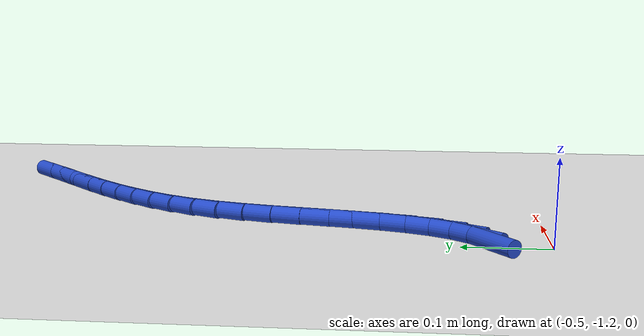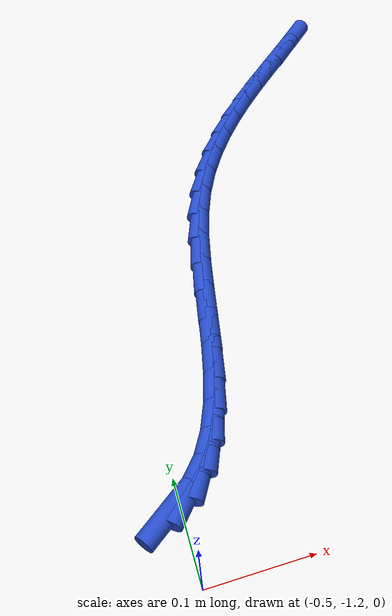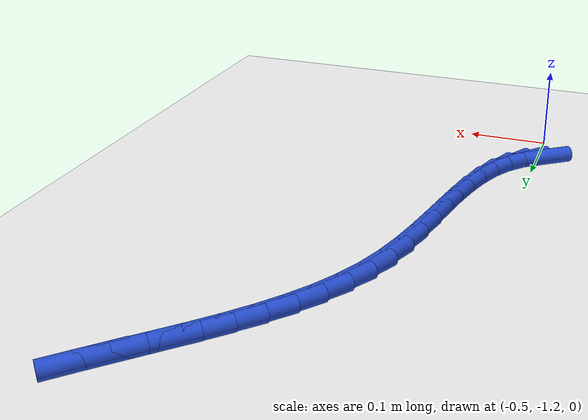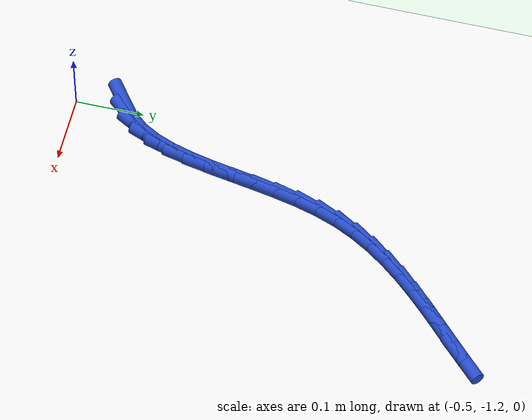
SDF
<sdf version="1.6">
 <world name="default">
  <model name="ground_plane">
   <static>1</static>
   <link name="link">
    <collision name="collision">
     <geometry><plane><normal>0 0 1</normal><size>100 100</size></plane></geometry>
     <surface><friction><ode><mu>100</mu><mu2>50</mu2></ode></friction></surface>
    </collision>
    <visual name="visual">
     <cast_shadows>0</cast_shadows>
     <geometry><plane><normal>0 0 1</normal><size>100 100</size></plane></geometry>
     <material>
      <script><uri>file://media/materials/scripts/gazebo.material</uri><name>Gazebo/WhiteGlow</name></script>
     </material>
    </visual>
   </link>
  </model>
  <model name="line">
   <link name="link_219">
    <pose>-0.5062939679249083 -1.129089946154273 0.01 0 1.57 0.6374153050875176</pose>
    <collision name="collision">
     <geometry><cylinder><radius>0.01</radius><length>0.08</length></cylinder></geometry>
    </collision>
    <visual name="visual">
     <material>
      <script><name>Gazebo/Blue</name><uri>file://media/materials/scripts/gazebo.material</uri></script>
     </material>
     <geometry><cylinder><radius>0.01</radius><length>0.08</length></cylinder></geometry>
    </visual>
   </link>
   <link name="link_220">
    <pose>-0.4857956326798358 -1.1139102315332052 0.01 0 1.57 0.8650249233705916</pose>
    <collision name="collision">
     <geometry><cylinder><radius>0.01</radius><length>0.08</length></cylinder></geometry>
    </collision>
    <visual name="visual">
     <material>
      <script><name>Gazebo/Blue</name><uri>file://media/materials/scripts/gazebo.material</uri></script>
     </material>
     <geometry><cylinder><radius>0.01</radius><length>0.08</length></cylinder></geometry>
    </visual>
   </link>
   <link name="link_221">
    <pose>-0.46919161195267645 -1.09442657759448 0.01 0 1.57 1.0557819755970972</pose>
    <collision name="collision">
     <geometry><cylinder><radius>0.01</radius><length>0.08</length></cylinder></geometry>
    </collision>
    <visual name="visual">
     <material>
      <script><name>Gazebo/Blue</name><uri>file://media/materials/scripts/gazebo.material</uri></script>
     </material>
     <geometry><cylinder><radius>0.01</radius><length>0.08</length></cylinder></geometry>
    </visual>
   </link>
   <link name="link_222">
    <pose>-0.45595945114754727 -1.0710465716310735 0.01 0 1.57 1.195878803112616</pose>
    <collision name="collision">
     <geometry><cylinder><radius>0.01</radius><length>0.08</length></cylinder></geometry>
    </collision>
    <visual name="visual">
     <material>
      <script><name>Gazebo/Blue</name><uri>file://media/materials/scripts/gazebo.material</uri></script>
     </material>
     <geometry><cylinder><radius>0.01</radius><length>0.08</length></cylinder></geometry>
    </visual>
   </link>
   <link name="link_223">
    <pose>-0.44546764514106435 -1.0443859086149956 0.01 0 1.57 1.2923639443951636</pose>
    <collision name="collision">
     <geometry><cylinder><radius>0.01</radius><length>0.08</length></cylinder></geometry>
    </collision>
    <visual name="visual">
     <material>
      <script><name>Gazebo/Blue</name><uri>file://media/materials/scripts/gazebo.material</uri></script>
     </material>
     <geometry><cylinder><radius>0.01</radius><length>0.08</length></cylinder></geometry>
    </visual>
   </link>
   <link name="link_224">
    <pose>-0.43708468636216624 -1.0150602881893078 0.01 0 1.57 1.3541503840389018</pose>
    <collision name="collision">
     <geometry><cylinder><radius>0.01</radius><length>0.08</length></cylinder></geometry>
    </collision>
    <visual name="visual">
     <material>
      <script><name>Gazebo/Blue</name><uri>file://media/materials/scripts/gazebo.material</uri></script>
     </material>
     <geometry><cylinder><radius>0.01</radius><length>0.08</length></cylinder></geometry>
    </visual>
   </link>
   <link name="link_225">
    <pose>-0.4301790672397914 -0.9836854099970707 0.01 0 1.57 1.3881526190965239</pose>
    <collision name="collision">
     <geometry><cylinder><radius>0.01</radius><length>0.08</length></cylinder></geometry>
    </collision>
    <visual name="visual">
     <material>
      <script><name>Gazebo/Blue</name><uri>file://media/materials/scripts/gazebo.material</uri></script>
     </material>
     <geometry><cylinder><radius>0.01</radius><length>0.08</length></cylinder></geometry>
    </visual>
   </link>
   <link name="link_226">
    <pose>-0.42411928020287826 -0.9508769736813459 0.01 0 1.57 1.3986802388856179</pose>
    <collision name="collision">
     <geometry><cylinder><radius>0.01</radius><length>0.08</length></cylinder></geometry>
    </collision>
    <visual name="visual">
     <material>
      <script><name>Gazebo/Blue</name><uri>file://media/materials/scripts/gazebo.material</uri></script>
     </material>
     <geometry><cylinder><radius>0.01</radius><length>0.08</length></cylinder></geometry>
    </visual>
   </link>
   <link name="link_227">
    <pose>-0.41827381768036537 -0.9172506788851942 0.01 0 1.57 1.3877393239991147</pose>
    <collision name="collision">
     <geometry><cylinder><radius>0.01</radius><length>0.08</length></cylinder></geometry>
    </collision>
    <visual name="visual">
     <material>
      <script><name>Gazebo/Blue</name><uri>file://media/materials/scripts/gazebo.material</uri></script>
     </material>
     <geometry><cylinder><radius>0.01</radius><length>0.08</length></cylinder></geometry>
    </visual>
   </link>
   <link name="link_228">
    <pose>-0.41201117210119115 -0.8834222252516767 0.01 0 1.57 1.3553865333098751</pose>
    <collision name="collision">
     <geometry><cylinder><radius>0.01</radius><length>0.08</length></cylinder></geometry>
    </collision>
    <visual name="visual">
     <material>
      <script><name>Gazebo/Blue</name><uri>file://media/materials/scripts/gazebo.material</uri></script>
     </material>
     <geometry><cylinder><radius>0.01</radius><length>0.08</length></cylinder></geometry>
    </visual>
   </link>
   <link name="link_229">
    <pose>-0.4046998358942938 -0.8500073124238539 0.01 0 1.57 1.29997806798628</pose>
    <collision name="collision">
     <geometry><cylinder><radius>0.01</radius><length>0.08</length></cylinder></geometry>
    </collision>
    <visual name="visual">
     <material>
      <script><name>Gazebo/Blue</name><uri>file://media/materials/scripts/gazebo.material</uri></script>
     </material>
     <geometry><cylinder><radius>0.01</radius><length>0.08</length></cylinder></geometry>
    </visual>
   </link>
   <link name="link_230">
    <pose>-0.3957083014886122 -0.8176216400447887 0.01 0 1.57 1.218641247219128</pose>
    <collision name="collision">
     <geometry><cylinder><radius>0.01</radius><length>0.08</length></cylinder></geometry>
    </collision>
    <visual name="visual">
     <material>
      <script><name>Gazebo/Blue</name><uri>file://media/materials/scripts/gazebo.material</uri></script>
     </material>
     <geometry><cylinder><radius>0.01</radius><length>0.08</length></cylinder></geometry>
    </visual>
   </link>
   <link name="link_231">
    <pose>-0.38441023821973147 -0.7868763231423832 0.01 0 1.57 1.1217367829859168</pose>
    <collision name="collision">
     <geometry><cylinder><radius>0.01</radius><length>0.08</length></cylinder></geometry>
    </collision>
    <visual name="visual">
     <material>
      <script><name>Gazebo/Blue</name><uri>file://media/materials/scripts/gazebo.material</uri></script>
     </material>
     <geometry><cylinder><radius>0.01</radius><length>0.08</length></cylinder></geometry>
    </visual>
   </link>
   <link name="link_232">
    <pose>-0.3705296619728293 -0.7580722134519469 0.01 0 1.57 1.0321922892373419</pose>
    <collision name="collision">
     <geometry><cylinder><radius>0.01</radius><length>0.08</length></cylinder></geometry>
    </collision>
    <visual name="visual">
     <material>
      <script><name>Gazebo/Blue</name><uri>file://media/materials/scripts/gazebo.material</uri></script>
     </material>
     <geometry><cylinder><radius>0.01</radius><length>0.08</length></cylinder></geometry>
    </visual>
   </link>
   <link name="link_233">
    <pose>-0.3543577945610573 -0.7310078509863036 0.01 0 1.57 0.9543226896561621</pose>
    <collision name="collision">
     <geometry><cylinder><radius>0.01</radius><length>0.08</length></cylinder></geometry>
    </collision>
    <visual name="visual">
     <material>
      <script><name>Gazebo/Blue</name><uri>file://media/materials/scripts/gazebo.material</uri></script>
     </material>
     <geometry><cylinder><radius>0.01</radius><length>0.08</length></cylinder></geometry>
    </visual>
   </link>
   <link name="link_234">
    <pose>-0.3362375880716904 -0.705435963960801 0.01 0 1.57 0.8894669606487031</pose>
    <collision name="collision">
     <geometry><cylinder><radius>0.01</radius><length>0.08</length></cylinder></geometry>
    </collision>
    <visual name="visual">
     <material>
      <script><name>Gazebo/Blue</name><uri>file://media/materials/scripts/gazebo.material</uri></script>
     </material>
     <geometry><cylinder><radius>0.01</radius><length>0.08</length></cylinder></geometry>
    </visual>
   </link>
   <link name="link_235">
    <pose>-0.31651199459200363 -0.6811092805907878 0.01 0 1.57 0.8381671165878904</pose>
    <collision name="collision">
     <geometry><cylinder><radius>0.01</radius><length>0.08</length></cylinder></geometry>
    </collision>
    <visual name="visual">
     <material>
      <script><name>Gazebo/Blue</name><uri>file://media/materials/scripts/gazebo.material</uri></script>
     </material>
     <geometry><cylinder><radius>0.01</radius><length>0.08</length></cylinder></geometry>
    </visual>
   </link>
   <link name="link_236">
    <pose>-0.29552396620927107 -0.6577805290916112 0.01 0 1.57 0.800471117127123</pose>
    <collision name="collision">
     <geometry><cylinder><radius>0.01</radius><length>0.08</length></cylinder></geometry>
    </collision>
    <visual name="visual">
     <material>
      <script><name>Gazebo/Blue</name><uri>file://media/materials/scripts/gazebo.material</uri></script>
     </material>
     <geometry><cylinder><radius>0.01</radius><length>0.08</length></cylinder></geometry>
    </visual>
   </link>
   <link name="link_237">
    <pose>-0.27361645501076876 -0.635202437678621 0.01 0 1.57 0.7762119239548417</pose>
    <collision name="collision">
     <geometry><cylinder><radius>0.01</radius><length>0.08</length></cylinder></geometry>
    </collision>
    <visual name="visual">
     <material>
      <script><name>Gazebo/Blue</name><uri>file://media/materials/scripts/gazebo.material</uri></script>
     </material>
     <geometry><cylinder><radius>0.01</radius><length>0.08</length></cylinder></geometry>
    </visual>
   </link>
   <link name="link_238">
    <pose>-0.25113241308377116 -0.6131277345671643 0.01 0 1.57 0.7652143187797628</pose>
    <collision name="collision">
     <geometry><cylinder><radius>0.01</radius><length>0.08</length></cylinder></geometry>
    </collision>
    <visual name="visual">
     <material>
      <script><name>Gazebo/Blue</name><uri>file://media/materials/scripts/gazebo.material</uri></script>
     </material>
     <geometry><cylinder><radius>0.01</radius><length>0.08</length></cylinder></geometry>
    </visual>
   </link>
   <link name="link_239">
    <pose>-0.22841479251555305 -0.5913091479725896 0.01 0 1.57 0.7674230304442168</pose>
    <collision name="collision">
     <geometry><cylinder><radius>0.01</radius><length>0.08</length></cylinder></geometry>
    </collision>
    <visual name="visual">
     <material>
      <script><name>Gazebo/Blue</name><uri>file://media/materials/scripts/gazebo.material</uri></script>
     </material>
     <geometry><cylinder><radius>0.01</radius><length>0.08</length></cylinder></geometry>
    </visual>
   </link>
   <link name="link_240">
    <pose>-0.20580654539338936 -0.5694994061102452 0.01 0 1.57 0.7829605505109541</pose>
    <collision name="collision">
     <geometry><cylinder><radius>0.01</radius><length>0.08</length></cylinder></geometry>
    </collision>
    <visual name="visual">
     <material>
      <script><name>Gazebo/Blue</name><uri>file://media/materials/scripts/gazebo.material</uri></script>
     </material>
     <geometry><cylinder><radius>0.01</radius><length>0.08</length></cylinder></geometry>
    </visual>
   </link>
  </model>
 </world>
</sdf>
